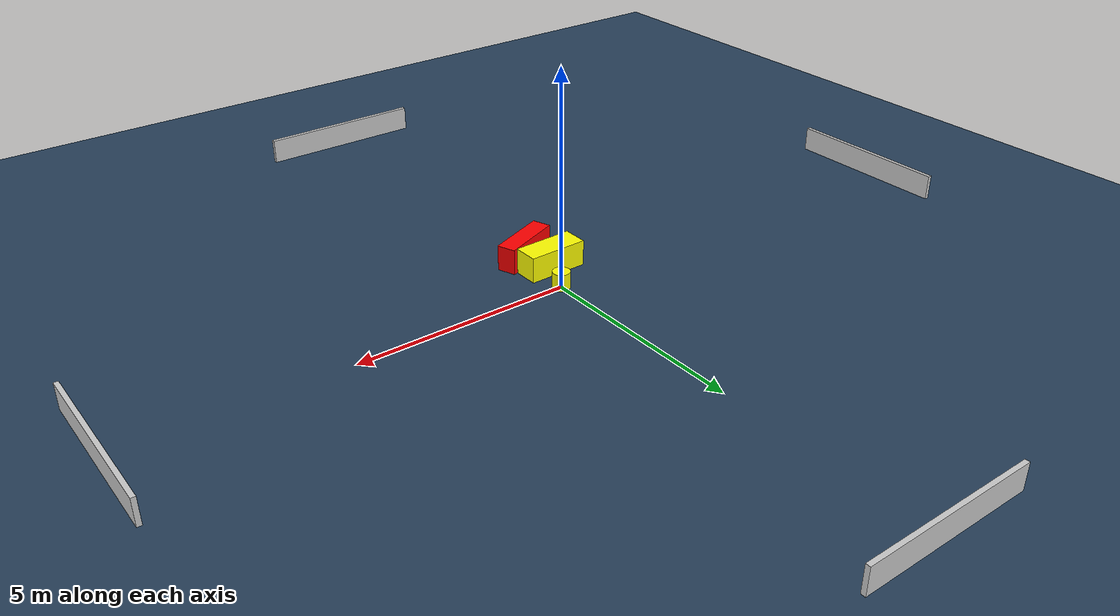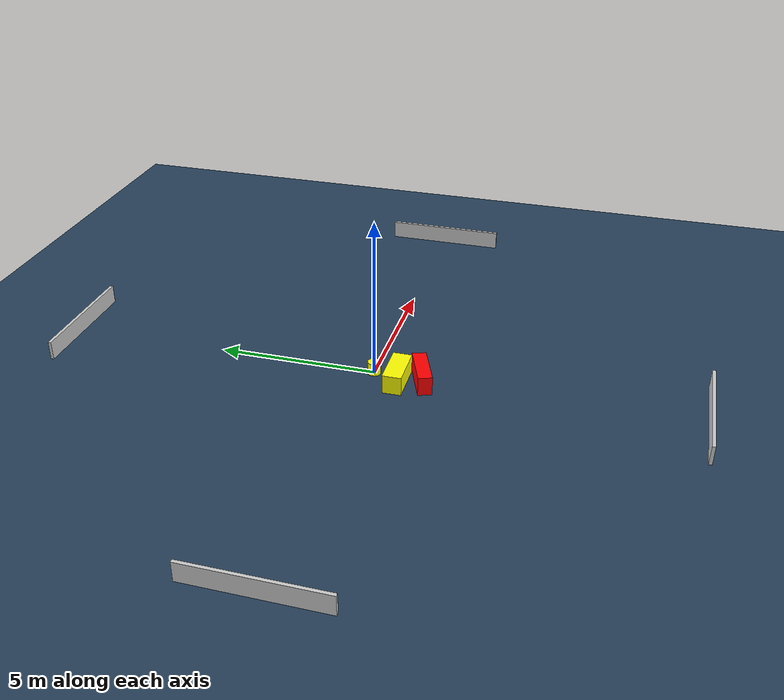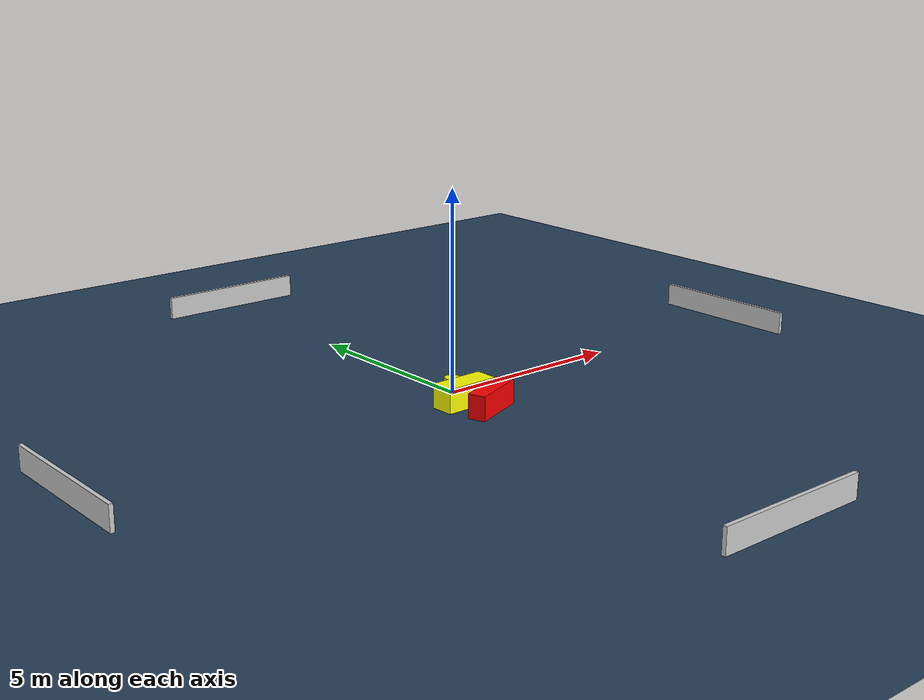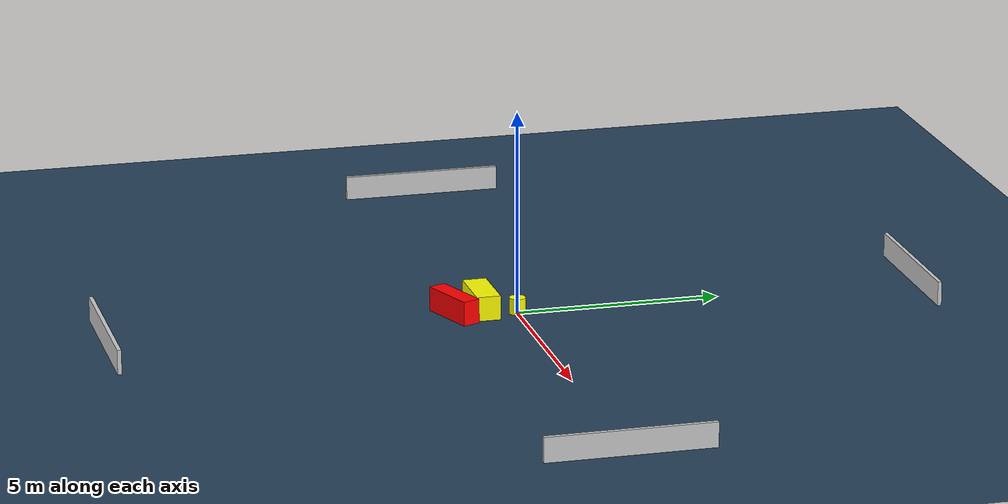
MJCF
<?xml version="1.0" ?>
<mujoco model="generated_environment">
  <option timestep="0.01" integrator="RK4" cone="elliptic"/>
  <default>
    <geom density="1"/>
  </default>
  <asset>
    <texture builtin="gradient" height="3072" name="skybox" rgb1="0.3 0.5 0.7" rgb2="0 0 0" type="skybox" width="512"/>
    <texture builtin="checker" height="300" name="groundplane" rgb1="0.2 0.3 0.4" rgb2="0.1 0.2 0.3" type="2d" width="300"/>
    <material name="groundplane" reflectance="0.2" texrepeat="5 5" texture="groundplane"/>
  </asset>
  <worldbody>
    <light dir="0 0 -1" directional="true" pos="0 0 1.5"/>
    <geom condim="3" friction="0.5 0.005 0.001" material="groundplane" name="floor" pos="0 0 0" size="0 0 0.05" type="plane"/>
    <body name="walls">
      <geom name="wall_1" condim="4" pos="-10.0 0.0 0.3" rgba="0.800000011920929 0.800000011920929 0.800000011920929 1.0" size="0.05 2.0 0.3" type="box"/>
      <geom name="wall_2" condim="4" pos="10.0 0.0 0.3" rgba="0.800000011920929 0.800000011920929 0.800000011920929 1.0" size="0.05 2.0 0.3" type="box"/>
      <geom name="wall_3" condim="4" pos="0.0 -10.0 0.3" rgba="0.800000011920929 0.800000011920929 0.800000011920929 1.0" size="2.0 0.05 0.3" type="box"/>
      <geom name="wall_4" condim="4" pos="0.0 10.0 0.3" rgba="0.800000011920929 0.800000011920929 0.800000011920929 1.0" size="2.0 0.05 0.3" type="box"/>
    </body>
    <body name="robot">
      <joint name="joint_x" type="slide" pos="0 0 0" axis="1 0 0"/>
      <joint name="joint_y" type="slide" pos="0 0 0" axis="0 1 0"/>
      <geom name="robot" type="cylinder" pos="0.0 0.0 0.2" size="0.2 0.2 0.0" mass="5.0" friction="1.0 0.005 0.0001" condim="4" rgba="1.0 1.0 0.0 1.0"/>
    </body>
    <body name="obstacle_1_movable">
      <geom name="obstacle_1_movable" condim="4" pos="-0.3191238226824579 -0.8112514170110933 0.3" euler="0 0 90.58819683330591" friction="0.0 0.005 0.001" rgba="1.0 1.0 0.0 1.0" size="0.29407112559268744 0.6983134926573639 0.3" type="box" mass="0.1"/>
      <joint type="free"/>
    </body>
    <body name="obstacle_2_static">
      <geom name="obstacle_2_static" condim="4" pos="-0.11774507909062949 -1.5327775564034762 0.3" euler="0 0 21.033909801066507" friction="0.0 0.005 0.001" rgba="1.0 0.0 0.0 1.0" size="0.7274176881639391 0.21934095753746993 0.3" type="box"/>
    </body>
  </worldbody>
  <actuator>
    <motor name="actuator_x" joint="joint_x" gear="1" ctrlrange="-1 1"/>
    <motor name="actuator_y" joint="joint_y" gear="1" ctrlrange="-1 1"/>
  </actuator>
</mujoco>
